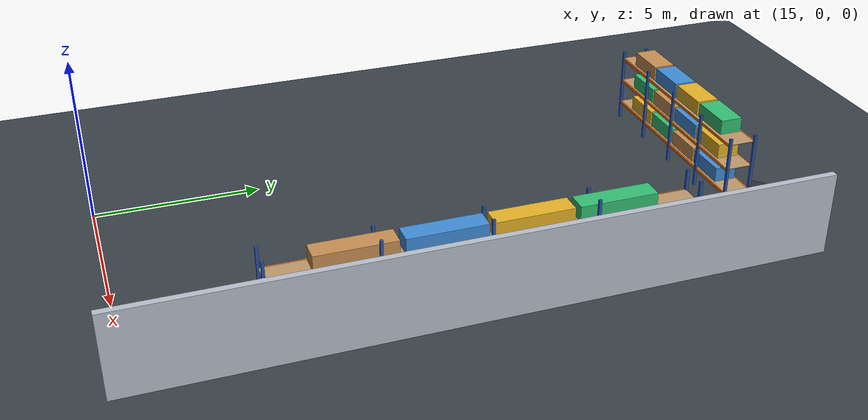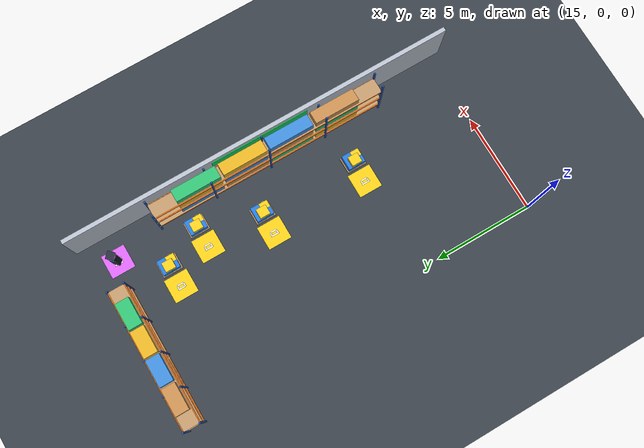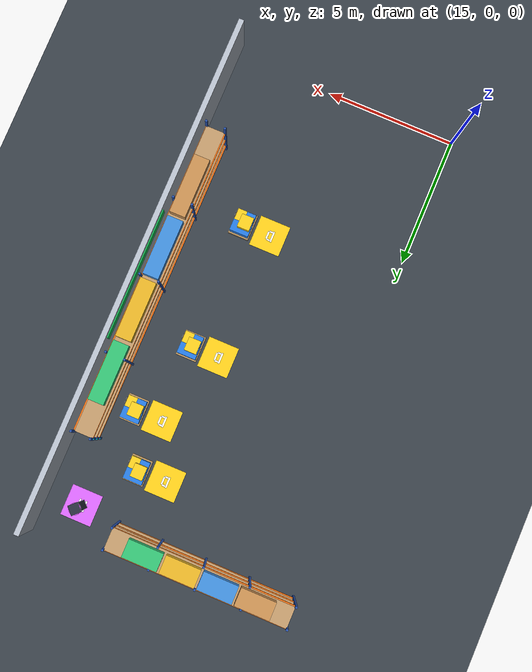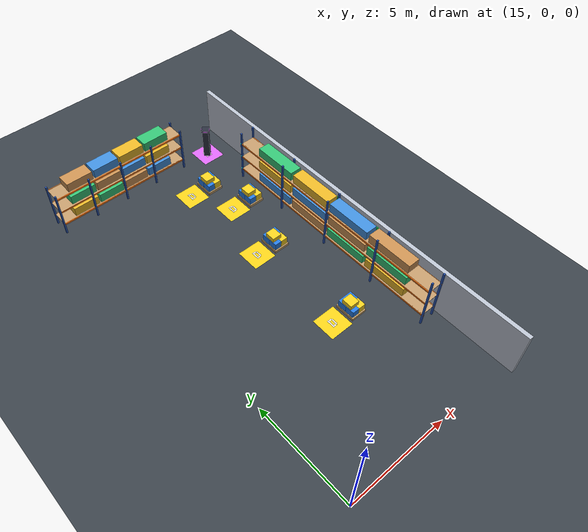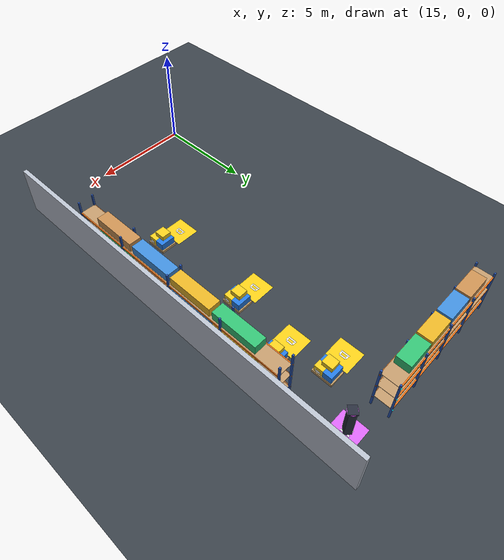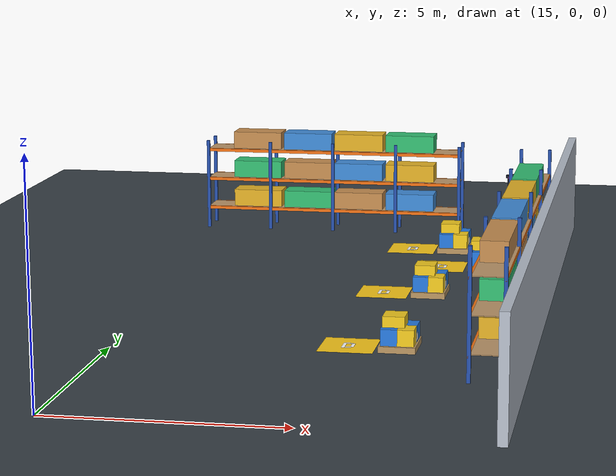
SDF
<sdf version="1.10">
 <world name="warehouse_s4">
  <model name="ground_plane">
   <static>true</static>
   <link name="link">
    <collision name="collision">
     <geometry><plane><normal>0 0 1</normal><size>25 20</size></plane></geometry>
    </collision>
    <visual name="visual">
     <geometry><plane><normal>0 0 1</normal><size>25 20</size></plane></geometry>
     <material>
      <ambient>0.22 0.25 0.28 1</ambient>
      <diffuse>0.22 0.25 0.28 1</diffuse>
      <specular>0.08 0.08 0.08 1</specular>
     </material>
    </visual>
    <pose>12.0 9.5 0 0 0 0</pose>
   </link>
  </model>
  <model name="wall_east">
   <static>true</static>
   <pose>23.9 9.5 1.25 0 0 0</pose>
   <link name="link">
    <collision name="c"><geometry><box><size>0.2 20.0 2.5</size></box></geometry></collision>
    <visual name="v">
     <geometry><box><size>0.2 20.0 2.5</size></box></geometry>
     <material>
      <ambient>0.65 0.68 0.72 1</ambient>
      <diffuse>0.72 0.75 0.80 1</diffuse>
      <specular>0.15 0.15 0.15 1</specular>
     </material>
    </visual>
   </link>
  </model>
  <model name="pad_dropoff_2">
   <static>true</static>
   <pose>20.000 16.000 0.003 0 0 0</pose>
   <link name="link">
    <visual name="pad_surface">
     <geometry><box><size>1.10 1.10 0.004</size></box></geometry>
     <material>
      <ambient>0.65 0.35 0.05 1</ambient>
      <diffuse>0.90 0.55 0.08 1</diffuse>
      <specular>0.4 0.4 0.4 1</specular>
     </material>
    </visual>
    <visual name="pad_border">
     <pose>0 0 0.002 0 0 0</pose>
     <geometry><box><size>1.20 1.20 0.002</size></box></geometry>
     <material><ambient>0.98 0.75 0.08 1</ambient><diffuse>1.0 0.80 0.10 1</diffuse></material>
    </visual>
    <visual name="stencil_d_vert">
     <pose>-0.10 0 0.005 0 0 0</pose>
     <geometry><box><size>0.07 0.42 0.003</size></box></geometry>
     <material><ambient>1 1 1 1</ambient><diffuse>1 1 1 1</diffuse><specular>0.5 0.5 0.5 1</specular></material>
    </visual>
    <visual name="stencil_d_top">
     <pose>0.0 0.16 0.005 0 0 0</pose>
     <geometry><box><size>0.15 0.07 0.003</size></box></geometry>
     <material><ambient>1 1 1 1</ambient><diffuse>1 1 1 1</diffuse><specular>0.5 0.5 0.5 1</specular></material>
    </visual>
    <visual name="stencil_d_bot">
     <pose>0.0 -0.16 0.005 0 0 0</pose>
     <geometry><box><size>0.15 0.07 0.003</size></box></geometry>
     <material><ambient>1 1 1 1</ambient><diffuse>1 1 1 1</diffuse><specular>0.5 0.5 0.5 1</specular></material>
    </visual>
    <visual name="stencil_d_right">
     <pose>0.09 0 0.005 0 0 0</pose>
     <geometry><box><size>0.07 0.30 0.003</size></box></geometry>
     <material><ambient>1 1 1 1</ambient><diffuse>1 1 1 1</diffuse><specular>0.5 0.5 0.5 1</specular></material>
    </visual>
   </link>
  </model>
  <model name="cargo_dropoff_2">
   <static>true</static>
   <pose>21.100 16.000 0.0 0 0 0.0000</pose>
   <link name="link">
    <visual name="pallet_base">
     <pose>0 0 0.07 0 0 0</pose>
     <geometry><box><size>0.80 1.00 0.14</size></box></geometry>
     <material><ambient>0.58 0.46 0.30 1</ambient><diffuse>0.72 0.58 0.38 1</diffuse></material>
    </visual>
    <visual name="box_ll">
     <pose>-0.18 -0.22 0.32 0 0 0</pose>
     <geometry><box><size>0.36 0.44 0.36</size></box></geometry>
     <material>
      <ambient>0.12 0.38 0.72 1</ambient>
      <diffuse>0.15 0.48 0.88 1</diffuse>
      <specular>0.3 0.3 0.3 1</specular>
     </material>
    </visual>
    <visual name="box_lr">
     <pose>0.18 -0.22 0.32 0 0 0</pose>
     <geometry><box><size>0.36 0.44 0.36</size></box></geometry>
     <material><ambient>0.88 0.70 0.08 1</ambient><diffuse>0.96 0.80 0.12 1</diffuse></material>
    </visual>
    <visual name="box_top">
     <pose>0 0.22 0.32 0 0 0</pose>
     <geometry><box><size>0.74 0.44 0.36</size></box></geometry>
     <material>
      <ambient>0.12 0.38 0.72 1</ambient>
      <diffuse>0.15 0.48 0.88 1</diffuse>
      <specular>0.3 0.3 0.3 1</specular>
     </material>
    </visual>
    <visual name="box_upper">
     <pose>-0.10 0.0 0.62 0 0 0</pose>
     <geometry><box><size>0.48 0.52 0.24</size></box></geometry>
     <material><ambient>0.88 0.70 0.08 1</ambient><diffuse>0.96 0.80 0.12 1</diffuse></material>
    </visual>
    <visual name="placard">
     <pose>0.402 -0.22 0.32 0 0 0</pose>
     <geometry><box><size>0.005 0.24 0.16</size></box></geometry>
     <material><ambient>0.95 0.95 0.95 1</ambient><diffuse>0.98 0.98 0.98 1</diffuse></material>
    </visual>
   </link>
  </model>
  <model name="pad_dropoff_3">
   <static>true</static>
   <pose>20.000 11.000 0.003 0 0 0</pose>
   <link name="link">
    <visual name="pad_surface">
     <geometry><box><size>1.10 1.10 0.004</size></box></geometry>
     <material>
      <ambient>0.65 0.35 0.05 1</ambient>
      <diffuse>0.90 0.55 0.08 1</diffuse>
      <specular>0.4 0.4 0.4 1</specular>
     </material>
    </visual>
    <visual name="pad_border">
     <pose>0 0 0.002 0 0 0</pose>
     <geometry><box><size>1.20 1.20 0.002</size></box></geometry>
     <material><ambient>0.98 0.75 0.08 1</ambient><diffuse>1.0 0.80 0.10 1</diffuse></material>
    </visual>
    <visual name="stencil_d_vert">
     <pose>-0.10 0 0.005 0 0 0</pose>
     <geometry><box><size>0.07 0.42 0.003</size></box></geometry>
     <material><ambient>1 1 1 1</ambient><diffuse>1 1 1 1</diffuse><specular>0.5 0.5 0.5 1</specular></material>
    </visual>
    <visual name="stencil_d_top">
     <pose>0.0 0.16 0.005 0 0 0</pose>
     <geometry><box><size>0.15 0.07 0.003</size></box></geometry>
     <material><ambient>1 1 1 1</ambient><diffuse>1 1 1 1</diffuse><specular>0.5 0.5 0.5 1</specular></material>
    </visual>
    <visual name="stencil_d_bot">
     <pose>0.0 -0.16 0.005 0 0 0</pose>
     <geometry><box><size>0.15 0.07 0.003</size></box></geometry>
     <material><ambient>1 1 1 1</ambient><diffuse>1 1 1 1</diffuse><specular>0.5 0.5 0.5 1</specular></material>
    </visual>
    <visual name="stencil_d_right">
     <pose>0.09 0 0.005 0 0 0</pose>
     <geometry><box><size>0.07 0.30 0.003</size></box></geometry>
     <material><ambient>1 1 1 1</ambient><diffuse>1 1 1 1</diffuse><specular>0.5 0.5 0.5 1</specular></material>
    </visual>
   </link>
  </model>
  <model name="cargo_dropoff_3">
   <static>true</static>
   <pose>21.100 11.000 0.0 0 0 0.0000</pose>
   <link name="link">
    <visual name="pallet_base">
     <pose>0 0 0.07 0 0 0</pose>
     <geometry><box><size>0.80 1.00 0.14</size></box></geometry>
     <material><ambient>0.58 0.46 0.30 1</ambient><diffuse>0.72 0.58 0.38 1</diffuse></material>
    </visual>
    <visual name="box_ll">
     <pose>-0.18 -0.22 0.32 0 0 0</pose>
     <geometry><box><size>0.36 0.44 0.36</size></box></geometry>
     <material>
      <ambient>0.12 0.38 0.72 1</ambient>
      <diffuse>0.15 0.48 0.88 1</diffuse>
      <specular>0.3 0.3 0.3 1</specular>
     </material>
    </visual>
    <visual name="box_lr">
     <pose>0.18 -0.22 0.32 0 0 0</pose>
     <geometry><box><size>0.36 0.44 0.36</size></box></geometry>
     <material><ambient>0.88 0.70 0.08 1</ambient><diffuse>0.96 0.80 0.12 1</diffuse></material>
    </visual>
    <visual name="box_top">
     <pose>0 0.22 0.32 0 0 0</pose>
     <geometry><box><size>0.74 0.44 0.36</size></box></geometry>
     <material>
      <ambient>0.12 0.38 0.72 1</ambient>
      <diffuse>0.15 0.48 0.88 1</diffuse>
      <specular>0.3 0.3 0.3 1</specular>
     </material>
    </visual>
    <visual name="box_upper">
     <pose>-0.10 0.0 0.62 0 0 0</pose>
     <geometry><box><size>0.48 0.52 0.24</size></box></geometry>
     <material><ambient>0.88 0.70 0.08 1</ambient><diffuse>0.96 0.80 0.12 1</diffuse></material>
    </visual>
    <visual name="placard">
     <pose>0.402 -0.22 0.32 0 0 0</pose>
     <geometry><box><size>0.005 0.24 0.16</size></box></geometry>
     <material><ambient>0.95 0.95 0.95 1</ambient><diffuse>0.98 0.98 0.98 1</diffuse></material>
    </visual>
   </link>
  </model>
  <model name="pad_dropoff_4">
   <static>true</static>
   <pose>20.000 6.000 0.003 0 0 0</pose>
   <link name="link">
    <visual name="pad_surface">
     <geometry><box><size>1.10 1.10 0.004</size></box></geometry>
     <material>
      <ambient>0.65 0.35 0.05 1</ambient>
      <diffuse>0.90 0.55 0.08 1</diffuse>
      <specular>0.4 0.4 0.4 1</specular>
     </material>
    </visual>
    <visual name="pad_border">
     <pose>0 0 0.002 0 0 0</pose>
     <geometry><box><size>1.20 1.20 0.002</size></box></geometry>
     <material><ambient>0.98 0.75 0.08 1</ambient><diffuse>1.0 0.80 0.10 1</diffuse></material>
    </visual>
    <visual name="stencil_d_vert">
     <pose>-0.10 0 0.005 0 0 0</pose>
     <geometry><box><size>0.07 0.42 0.003</size></box></geometry>
     <material><ambient>1 1 1 1</ambient><diffuse>1 1 1 1</diffuse><specular>0.5 0.5 0.5 1</specular></material>
    </visual>
    <visual name="stencil_d_top">
     <pose>0.0 0.16 0.005 0 0 0</pose>
     <geometry><box><size>0.15 0.07 0.003</size></box></geometry>
     <material><ambient>1 1 1 1</ambient><diffuse>1 1 1 1</diffuse><specular>0.5 0.5 0.5 1</specular></material>
    </visual>
    <visual name="stencil_d_bot">
     <pose>0.0 -0.16 0.005 0 0 0</pose>
     <geometry><box><size>0.15 0.07 0.003</size></box></geometry>
     <material><ambient>1 1 1 1</ambient><diffuse>1 1 1 1</diffuse><specular>0.5 0.5 0.5 1</specular></material>
    </visual>
    <visual name="stencil_d_right">
     <pose>0.09 0 0.005 0 0 0</pose>
     <geometry><box><size>0.07 0.30 0.003</size></box></geometry>
     <material><ambient>1 1 1 1</ambient><diffuse>1 1 1 1</diffuse><specular>0.5 0.5 0.5 1</specular></material>
    </visual>
   </link>
  </model>
  <model name="cargo_dropoff_4">
   <static>true</static>
   <pose>21.100 6.000 0.0 0 0 0.0000</pose>
   <link name="link">
    <visual name="pallet_base">
     <pose>0 0 0.07 0 0 0</pose>
     <geometry><box><size>0.80 1.00 0.14</size></box></geometry>
     <material><ambient>0.58 0.46 0.30 1</ambient><diffuse>0.72 0.58 0.38 1</diffuse></material>
    </visual>
    <visual name="box_ll">
     <pose>-0.18 -0.22 0.32 0 0 0</pose>
     <geometry><box><size>0.36 0.44 0.36</size></box></geometry>
     <material>
      <ambient>0.12 0.38 0.72 1</ambient>
      <diffuse>0.15 0.48 0.88 1</diffuse>
      <specular>0.3 0.3 0.3 1</specular>
     </material>
    </visual>
    <visual name="box_lr">
     <pose>0.18 -0.22 0.32 0 0 0</pose>
     <geometry><box><size>0.36 0.44 0.36</size></box></geometry>
     <material><ambient>0.88 0.70 0.08 1</ambient><diffuse>0.96 0.80 0.12 1</diffuse></material>
    </visual>
    <visual name="box_top">
     <pose>0 0.22 0.32 0 0 0</pose>
     <geometry><box><size>0.74 0.44 0.36</size></box></geometry>
     <material>
      <ambient>0.12 0.38 0.72 1</ambient>
      <diffuse>0.15 0.48 0.88 1</diffuse>
      <specular>0.3 0.3 0.3 1</specular>
     </material>
    </visual>
    <visual name="box_upper">
     <pose>-0.10 0.0 0.62 0 0 0</pose>
     <geometry><box><size>0.48 0.52 0.24</size></box></geometry>
     <material><ambient>0.88 0.70 0.08 1</ambient><diffuse>0.96 0.80 0.12 1</diffuse></material>
    </visual>
    <visual name="placard">
     <pose>0.402 -0.22 0.32 0 0 0</pose>
     <geometry><box><size>0.005 0.24 0.16</size></box></geometry>
     <material><ambient>0.95 0.95 0.95 1</ambient><diffuse>0.98 0.98 0.98 1</diffuse></material>
    </visual>
   </link>
  </model>
  <model name="pad_dropoff_5">
   <static>true</static>
   <pose>21.000 14.000 0.003 0 0 0</pose>
   <link name="link">
    <visual name="pad_surface">
     <geometry><box><size>1.10 1.10 0.004</size></box></geometry>
     <material>
      <ambient>0.65 0.35 0.05 1</ambient>
      <diffuse>0.90 0.55 0.08 1</diffuse>
      <specular>0.4 0.4 0.4 1</specular>
     </material>
    </visual>
    <visual name="pad_border">
     <pose>0 0 0.002 0 0 0</pose>
     <geometry><box><size>1.20 1.20 0.002</size></box></geometry>
     <material><ambient>0.98 0.75 0.08 1</ambient><diffuse>1.0 0.80 0.10 1</diffuse></material>
    </visual>
    <visual name="stencil_d_vert">
     <pose>-0.10 0 0.005 0 0 0</pose>
     <geometry><box><size>0.07 0.42 0.003</size></box></geometry>
     <material><ambient>1 1 1 1</ambient><diffuse>1 1 1 1</diffuse><specular>0.5 0.5 0.5 1</specular></material>
    </visual>
    <visual name="stencil_d_top">
     <pose>0.0 0.16 0.005 0 0 0</pose>
     <geometry><box><size>0.15 0.07 0.003</size></box></geometry>
     <material><ambient>1 1 1 1</ambient><diffuse>1 1 1 1</diffuse><specular>0.5 0.5 0.5 1</specular></material>
    </visual>
    <visual name="stencil_d_bot">
     <pose>0.0 -0.16 0.005 0 0 0</pose>
     <geometry><box><size>0.15 0.07 0.003</size></box></geometry>
     <material><ambient>1 1 1 1</ambient><diffuse>1 1 1 1</diffuse><specular>0.5 0.5 0.5 1</specular></material>
    </visual>
    <visual name="stencil_d_right">
     <pose>0.09 0 0.005 0 0 0</pose>
     <geometry><box><size>0.07 0.30 0.003</size></box></geometry>
     <material><ambient>1 1 1 1</ambient><diffuse>1 1 1 1</diffuse><specular>0.5 0.5 0.5 1</specular></material>
    </visual>
   </link>
  </model>
  <model name="cargo_dropoff_5">
   <static>true</static>
   <pose>22.100 14.000 0.0 0 0 0.0000</pose>
   <link name="link">
    <visual name="pallet_base">
     <pose>0 0 0.07 0 0 0</pose>
     <geometry><box><size>0.80 1.00 0.14</size></box></geometry>
     <material><ambient>0.58 0.46 0.30 1</ambient><diffuse>0.72 0.58 0.38 1</diffuse></material>
    </visual>
    <visual name="box_ll">
     <pose>-0.18 -0.22 0.32 0 0 0</pose>
     <geometry><box><size>0.36 0.44 0.36</size></box></geometry>
     <material>
      <ambient>0.12 0.38 0.72 1</ambient>
      <diffuse>0.15 0.48 0.88 1</diffuse>
      <specular>0.3 0.3 0.3 1</specular>
     </material>
    </visual>
    <visual name="box_lr">
     <pose>0.18 -0.22 0.32 0 0 0</pose>
     <geometry><box><size>0.36 0.44 0.36</size></box></geometry>
     <material><ambient>0.88 0.70 0.08 1</ambient><diffuse>0.96 0.80 0.12 1</diffuse></material>
    </visual>
    <visual name="box_top">
     <pose>0 0.22 0.32 0 0 0</pose>
     <geometry><box><size>0.74 0.44 0.36</size></box></geometry>
     <material>
      <ambient>0.12 0.38 0.72 1</ambient>
      <diffuse>0.15 0.48 0.88 1</diffuse>
      <specular>0.3 0.3 0.3 1</specular>
     </material>
    </visual>
    <visual name="box_upper">
     <pose>-0.10 0.0 0.62 0 0 0</pose>
     <geometry><box><size>0.48 0.52 0.24</size></box></geometry>
     <material><ambient>0.88 0.70 0.08 1</ambient><diffuse>0.96 0.80 0.12 1</diffuse></material>
    </visual>
    <visual name="placard">
     <pose>0.402 -0.22 0.32 0 0 0</pose>
     <geometry><box><size>0.005 0.24 0.16</size></box></geometry>
     <material><ambient>0.95 0.95 0.95 1</ambient><diffuse>0.98 0.98 0.98 1</diffuse></material>
    </visual>
   </link>
  </model>
  <model name="pad_charge_ne">
   <static>true</static>
   <pose>22.500 18.000 0.003 0 0 0</pose>
   <link name="link">
    <visual name="pad_surface">
     <geometry><box><size>1.10 1.10 0.004</size></box></geometry>
     <material>
      <ambient>0.40 0.15 0.65 1</ambient>
      <diffuse>0.65 0.25 0.95 1</diffuse>
      <specular>0.5 0.5 0.5 1</specular>
     </material>
    </visual>
    <visual name="pad_border">
     <pose>0 0 0.002 0 0 0</pose>
     <geometry><box><size>1.20 1.20 0.002</size></box></geometry>
     <material><ambient>0.80 0.35 1.0 1</ambient><diffuse>0.85 0.40 1.0 1</diffuse></material>
    </visual>
    <visual name="stencil_h_left">
     <pose>-0.12 0 0.005 0 0 0</pose>
     <geometry><box><size>0.07 0.42 0.003</size></box></geometry>
     <material><ambient>1 1 1 1</ambient><diffuse>1 1 1 1</diffuse><specular>0.5 0.5 0.5 1</specular></material>
    </visual>
    <visual name="stencil_h_right">
     <pose>0.12 0 0.005 0 0 0</pose>
     <geometry><box><size>0.07 0.42 0.003</size></box></geometry>
     <material><ambient>1 1 1 1</ambient><diffuse>1 1 1 1</diffuse><specular>0.5 0.5 0.5 1</specular></material>
    </visual>
    <visual name="stencil_h_mid">
     <pose>0 0 0.005 0 0 0</pose>
     <geometry><box><size>0.22 0.07 0.003</size></box></geometry>
     <material><ambient>1 1 1 1</ambient><diffuse>1 1 1 1</diffuse><specular>0.5 0.5 0.5 1</specular></material>
    </visual>
   </link>
  </model>
  <model name="kiosk_charge_ne">
   <static>true</static>
   <pose>22.500 18.000 0.0 0 0 2.3560</pose>
   <link name="link">
    <visual name="pillar">
     <pose>0 0 0.80 0 0 0</pose>
     <geometry><box><size>0.32 0.32 1.60</size></box></geometry>
     <material>
      <ambient>0.12 0.14 0.18 1</ambient>
      <diffuse>0.16 0.18 0.24 1</diffuse>
      <specular>0.4 0.4 0.4 1</specular>
     </material>
    </visual>
    <visual name="cap">
     <pose>0 0 1.64 0 0 0</pose>
     <geometry><box><size>0.38 0.38 0.08</size></box></geometry>
     <material>
      <ambient>0.12 0.14 0.18 1</ambient>
      <diffuse>0.16 0.18 0.24 1</diffuse>
      <specular>0.4 0.4 0.4 1</specular>
     </material>
    </visual>
    <visual name="halo_ring">
     <pose>0 0 1.61 0 0 0</pose>
     <geometry><cylinder><radius>0.22</radius><length>0.05</length></cylinder></geometry>
     <material>
      <ambient>0.75 0.25 0.95 1</ambient>
      <diffuse>0.85 0.35 1.0 1</diffuse>
      <specular>1 1 1 1</specular>
     </material>
    </visual>
    <visual name="screen">
     <pose>0.162 0 1.10 0 0 0</pose>
     <geometry><box><size>0.008 0.22 0.32</size></box></geometry>
     <material>
      <ambient>0.0 0.85 1.0 1</ambient>
      <diffuse>0.0 0.95 1.0 1</diffuse>
      <specular>0.8 0.8 0.8 1</specular>
     </material>
    </visual>
   </link>
  </model>
  <model name="rack_right_north">
   <static>true</static>
   <pose>17.500 18.400 0.000 0 0 0.0000</pose>
   <link name="link">
    <visual name="post_1">
     <pose>-3.460 -0.410 1.200 0 0 0</pose>
     <geometry><box><size>0.08 0.08 2.400</size></box></geometry>
     <material>
      <ambient>0.10 0.20 0.45 1</ambient>
      <diffuse>0.15 0.32 0.68 1</diffuse>
      <specular>0.3 0.3 0.3 1</specular>
     </material>
    </visual>
    <visual name="post_2">
     <pose>-3.460 0.410 1.200 0 0 0</pose>
     <geometry><box><size>0.08 0.08 2.400</size></box></geometry>
     <material>
      <ambient>0.10 0.20 0.45 1</ambient>
      <diffuse>0.15 0.32 0.68 1</diffuse>
      <specular>0.3 0.3 0.3 1</specular>
     </material>
    </visual>
    <visual name="post_3">
     <pose>3.460 -0.410 1.200 0 0 0</pose>
     <geometry><box><size>0.08 0.08 2.400</size></box></geometry>
     <material>
      <ambient>0.10 0.20 0.45 1</ambient>
      <diffuse>0.15 0.32 0.68 1</diffuse>
      <specular>0.3 0.3 0.3 1</specular>
     </material>
    </visual>
    <visual name="post_4">
     <pose>3.460 0.410 1.200 0 0 0</pose>
     <geometry><box><size>0.08 0.08 2.400</size></box></geometry>
     <material>
      <ambient>0.10 0.20 0.45 1</ambient>
      <diffuse>0.15 0.32 0.68 1</diffuse>
      <specular>0.3 0.3 0.3 1</specular>
     </material>
    </visual>
    <visual name="post_5">
     <pose>0.000 -0.410 1.200 0 0 0</pose>
     <geometry><box><size>0.08 0.08 2.400</size></box></geometry>
     <material>
      <ambient>0.10 0.20 0.45 1</ambient>
      <diffuse>0.15 0.32 0.68 1</diffuse>
      <specular>0.3 0.3 0.3 1</specular>
     </material>
    </visual>
    <visual name="post_6">
     <pose>0.000 0.410 1.200 0 0 0</pose>
     <geometry><box><size>0.08 0.08 2.400</size></box></geometry>
     <material>
      <ambient>0.10 0.20 0.45 1</ambient>
      <diffuse>0.15 0.32 0.68 1</diffuse>
      <specular>0.3 0.3 0.3 1</specular>
     </material>
    </visual>
    <visual name="post_7">
     <pose>-1.730 -0.410 1.200 0 0 0</pose>
     <geometry><box><size>0.08 0.08 2.400</size></box></geometry>
     <material>
      <ambient>0.10 0.20 0.45 1</ambient>
      <diffuse>0.15 0.32 0.68 1</diffuse>
      <specular>0.3 0.3 0.3 1</specular>
     </material>
    </visual>
    <visual name="post_8">
     <pose>-1.730 0.410 1.200 0 0 0</pose>
     <geometry><box><size>0.08 0.08 2.400</size></box></geometry>
     <material>
      <ambient>0.10 0.20 0.45 1</ambient>
      <diffuse>0.15 0.32 0.68 1</diffuse>
      <specular>0.3 0.3 0.3 1</specular>
     </material>
    </visual>
    <visual name="post_9">
     <pose>1.730 -0.410 1.200 0 0 0</pose>
     <geometry><box><size>0.08 0.08 2.400</size></box></geometry>
     <material>
      <ambient>0.10 0.20 0.45 1</ambient>
      <diffuse>0.15 0.32 0.68 1</diffuse>
      <specular>0.3 0.3 0.3 1</specular>
     </material>
    </visual>
    <visual name="post_10">
     <pose>1.730 0.410 1.200 0 0 0</pose>
     <geometry><box><size>0.08 0.08 2.400</size></box></geometry>
     <material>
      <ambient>0.10 0.20 0.45 1</ambient>
      <diffuse>0.15 0.32 0.68 1</diffuse>
      <specular>0.3 0.3 0.3 1</specular>
     </material>
    </visual>
    <visual name="beam_front_1">
     <pose>0 -0.410 0.550 0 0 0</pose>
     <geometry><box><size>7.000 0.05 0.08</size></box></geometry>
     <material>
      <ambient>0.85 0.35 0.05 1</ambient>
      <diffuse>0.95 0.45 0.08 1</diffuse>
      <specular>0.2 0.2 0.2 1</specular>
     </material>
    </visual>
    <visual name="beam_back_1">
     <pose>0 0.410 0.550 0 0 0</pose>
     <geometry><box><size>7.000 0.05 0.08</size></box></geometry>
     <material>
      <ambient>0.85 0.35 0.05 1</ambient>
      <diffuse>0.95 0.45 0.08 1</diffuse>
      <specular>0.2 0.2 0.2 1</specular>
     </material>
    </visual>
    <visual name="deck_1">
     <pose>0 0 0.580 0 0 0</pose>
     <geometry><box><size>6.900 0.840 0.02</size></box></geometry>
     <material>
      <ambient>0.60 0.48 0.32 1</ambient>
      <diffuse>0.75 0.60 0.42 1</diffuse>
      <specular>0.1 0.1 0.1 1</specular>
     </material>
    </visual>
    <visual name="cargo_t1_b1">
     <pose>-2.100 0 0.825 0 0 0</pose>
     <geometry><box><size>1.312 0.675 0.450</size></box></geometry>
     <material><ambient>0.75 0.55 0.10 1</ambient><diffuse>0.90 0.70 0.15 1</diffuse></material>
    </visual>
    <visual name="cargo_t1_b2">
     <pose>-0.700 0 0.825 0 0 0</pose>
     <geometry><box><size>1.312 0.675 0.450</size></box></geometry>
     <material><ambient>0.15 0.60 0.35 1</ambient><diffuse>0.20 0.75 0.45 1</diffuse></material>
    </visual>
    <visual name="cargo_t1_b3">
     <pose>0.700 0 0.825 0 0 0</pose>
     <geometry><box><size>1.312 0.675 0.450</size></box></geometry>
     <material><ambient>0.65 0.45 0.25 1</ambient><diffuse>0.78 0.56 0.32 1</diffuse></material>
    </visual>
    <visual name="cargo_t1_b4">
     <pose>2.100 0 0.825 0 0 0</pose>
     <geometry><box><size>1.312 0.675 0.450</size></box></geometry>
     <material><ambient>0.20 0.45 0.70 1</ambient><diffuse>0.25 0.55 0.85 1</diffuse></material>
    </visual>
    <visual name="led_indicator_1">
     <pose>3.460 0.450 0.600 0 0 0</pose>
     <geometry><sphere><radius>0.035</radius></sphere></geometry>
     <material>
      <ambient>0.0 0.85 1.0 1</ambient>
      <diffuse>0.0 0.95 1.0 1</diffuse>
      <specular>1 1 1 1</specular>
     </material>
    </visual>
    <visual name="beam_front_2">
     <pose>0 -0.410 1.350 0 0 0</pose>
     <geometry><box><size>7.000 0.05 0.08</size></box></geometry>
     <material>
      <ambient>0.85 0.35 0.05 1</ambient>
      <diffuse>0.95 0.45 0.08 1</diffuse>
      <specular>0.2 0.2 0.2 1</specular>
     </material>
    </visual>
    <visual name="beam_back_2">
     <pose>0 0.410 1.350 0 0 0</pose>
     <geometry><box><size>7.000 0.05 0.08</size></box></geometry>
     <material>
      <ambient>0.85 0.35 0.05 1</ambient>
      <diffuse>0.95 0.45 0.08 1</diffuse>
      <specular>0.2 0.2 0.2 1</specular>
     </material>
    </visual>
    <visual name="deck_2">
     <pose>0 0 1.380 0 0 0</pose>
     <geometry><box><size>6.900 0.840 0.02</size></box></geometry>
     <material>
      <ambient>0.60 0.48 0.32 1</ambient>
      <diffuse>0.75 0.60 0.42 1</diffuse>
      <specular>0.1 0.1 0.1 1</specular>
     </material>
    </visual>
    <visual name="cargo_t2_b1">
     <pose>-2.100 0 1.625 0 0 0</pose>
     <geometry><box><size>1.312 0.675 0.450</size></box></geometry>
     <material><ambient>0.15 0.60 0.35 1</ambient><diffuse>0.20 0.75 0.45 1</diffuse></material>
    </visual>
    <visual name="cargo_t2_b2">
     <pose>-0.700 0 1.625 0 0 0</pose>
     <geometry><box><size>1.312 0.675 0.450</size></box></geometry>
     <material><ambient>0.65 0.45 0.25 1</ambient><diffuse>0.78 0.56 0.32 1</diffuse></material>
    </visual>
    <visual name="cargo_t2_b3">
     <pose>0.700 0 1.625 0 0 0</pose>
     <geometry><box><size>1.312 0.675 0.450</size></box></geometry>
     <material><ambient>0.20 0.45 0.70 1</ambient><diffuse>0.25 0.55 0.85 1</diffuse></material>
    </visual>
    <visual name="cargo_t2_b4">
     <pose>2.100 0 1.625 0 0 0</pose>
     <geometry><box><size>1.312 0.675 0.450</size></box></geometry>
     <material><ambient>0.75 0.55 0.10 1</ambient><diffuse>0.90 0.70 0.15 1</diffuse></material>
    </visual>
    <visual name="led_indicator_2">
     <pose>3.460 0.450 1.400 0 0 0</pose>
     <geometry><sphere><radius>0.035</radius></sphere></geometry>
     <material>
      <ambient>0.0 0.85 1.0 1</ambient>
      <diffuse>0.0 0.95 1.0 1</diffuse>
      <specular>1 1 1 1</specular>
     </material>
    </visual>
    <visual name="beam_front_3">
     <pose>0 -0.410 2.150 0 0 0</pose>
     <geometry><box><size>7.000 0.05 0.08</size></box></geometry>
     <material>
      <ambient>0.85 0.35 0.05 1</ambient>
      <diffuse>0.95 0.45 0.08 1</diffuse>
      <specular>0.2 0.2 0.2 1</specular>
     </material>
    </visual>
    <visual name="beam_back_3">
     <pose>0 0.410 2.150 0 0 0</pose>
     <geometry><box><size>7.000 0.05 0.08</size></box></geometry>
     <material>
      <ambient>0.85 0.35 0.05 1</ambient>
      <diffuse>0.95 0.45 0.08 1</diffuse>
      <specular>0.2 0.2 0.2 1</specular>
     </material>
    </visual>
    <visual name="deck_3">
     <pose>0 0 2.180 0 0 0</pose>
     <geometry><box><size>6.900 0.840 0.02</size></box></geometry>
     <material>
      <ambient>0.60 0.48 0.32 1</ambient>
      <diffuse>0.75 0.60 0.42 1</diffuse>
      <specular>0.1 0.1 0.1 1</specular>
     </material>
    </visual>
    <visual name="cargo_t3_b1">
     <pose>-2.100 0 2.425 0 0 0</pose>
     <geometry><box><size>1.312 0.675 0.450</size></box></geometry>
     <material><ambient>0.65 0.45 0.25 1</ambient><diffuse>0.78 0.56 0.32 1</diffuse></material>
    </visual>
    <visual name="cargo_t3_b2">
     <pose>-0.700 0 2.425 0 0 0</pose>
     <geometry><box><size>1.312 0.675 0.450</size></box></geometry>
     <material><ambient>0.20 0.45 0.70 1</ambient><diffuse>0.25 0.55 0.85 1</diffuse></material>
    </visual>
    <visual name="cargo_t3_b3">
     <pose>0.700 0 2.425 0 0 0</pose>
     <geometry><box><size>1.312 0.675 0.450</size></box></geometry>
     <material><ambient>0.75 0.55 0.10 1</ambient><diffuse>0.90 0.70 0.15 1</diffuse></material>
    </visual>
    <visual name="cargo_t3_b4">
     <pose>2.100 0 2.425 0 0 0</pose>
     <geometry><box><size>1.312 0.675 0.450</size></box></geometry>
     <material><ambient>0.15 0.60 0.35 1</ambient><diffuse>0.20 0.75 0.45 1</diffuse></material>
    </visual>
    <visual name="led_indicator_3">
     <pose>3.460 0.450 2.200 0 0 0</pose>
     <geometry><sphere><radius>0.035</radius></sphere></geometry>
     <material>
      <ambient>0.0 0.85 1.0 1</ambient>
      <diffuse>0.0 0.95 1.0 1</diffuse>
      <specular>1 1 1 1</specular>
     </material>
    </visual>
   </link>
  </model>
  <model name="rack_right_east_hi">
   <static>true</static>
   <pose>23.200 9.500 0.000 0 0 1.5708</pose>
   <link name="link">
    <visual name="post_1">
     <pose>-5.960 -0.360 1.400 0 0 0</pose>
     <geometry><box><size>0.08 0.08 2.800</size></box></geometry>
     <material>
      <ambient>0.10 0.20 0.45 1</ambient>
      <diffuse>0.15 0.32 0.68 1</diffuse>
      <specular>0.3 0.3 0.3 1</specular>
     </material>
    </visual>
    <visual name="post_2">
     <pose>-5.960 0.360 1.400 0 0 0</pose>
     <geometry><box><size>0.08 0.08 2.800</size></box></geometry>
     <material>
      <ambient>0.10 0.20 0.45 1</ambient>
      <diffuse>0.15 0.32 0.68 1</diffuse>
      <specular>0.3 0.3 0.3 1</specular>
     </material>
    </visual>
    <visual name="post_3">
     <pose>5.960 -0.360 1.400 0 0 0</pose>
     <geometry><box><size>0.08 0.08 2.800</size></box></geometry>
     <material>
      <ambient>0.10 0.20 0.45 1</ambient>
      <diffuse>0.15 0.32 0.68 1</diffuse>
      <specular>0.3 0.3 0.3 1</specular>
     </material>
    </visual>
    <visual name="post_4">
     <pose>5.960 0.360 1.400 0 0 0</pose>
     <geometry><box><size>0.08 0.08 2.800</size></box></geometry>
     <material>
      <ambient>0.10 0.20 0.45 1</ambient>
      <diffuse>0.15 0.32 0.68 1</diffuse>
      <specular>0.3 0.3 0.3 1</specular>
     </material>
    </visual>
    <visual name="post_5">
     <pose>0.000 -0.360 1.400 0 0 0</pose>
     <geometry><box><size>0.08 0.08 2.800</size></box></geometry>
     <material>
      <ambient>0.10 0.20 0.45 1</ambient>
      <diffuse>0.15 0.32 0.68 1</diffuse>
      <specular>0.3 0.3 0.3 1</specular>
     </material>
    </visual>
    <visual name="post_6">
     <pose>0.000 0.360 1.400 0 0 0</pose>
     <geometry><box><size>0.08 0.08 2.800</size></box></geometry>
     <material>
      <ambient>0.10 0.20 0.45 1</ambient>
      <diffuse>0.15 0.32 0.68 1</diffuse>
      <specular>0.3 0.3 0.3 1</specular>
     </material>
    </visual>
    <visual name="post_7">
     <pose>-2.980 -0.360 1.400 0 0 0</pose>
     <geometry><box><size>0.08 0.08 2.800</size></box></geometry>
     <material>
      <ambient>0.10 0.20 0.45 1</ambient>
      <diffuse>0.15 0.32 0.68 1</diffuse>
      <specular>0.3 0.3 0.3 1</specular>
     </material>
    </visual>
    <visual name="post_8">
     <pose>-2.980 0.360 1.400 0 0 0</pose>
     <geometry><box><size>0.08 0.08 2.800</size></box></geometry>
     <material>
      <ambient>0.10 0.20 0.45 1</ambient>
      <diffuse>0.15 0.32 0.68 1</diffuse>
      <specular>0.3 0.3 0.3 1</specular>
     </material>
    </visual>
    <visual name="post_9">
     <pose>2.980 -0.360 1.400 0 0 0</pose>
     <geometry><box><size>0.08 0.08 2.800</size></box></geometry>
     <material>
      <ambient>0.10 0.20 0.45 1</ambient>
      <diffuse>0.15 0.32 0.68 1</diffuse>
      <specular>0.3 0.3 0.3 1</specular>
     </material>
    </visual>
    <visual name="post_10">
     <pose>2.980 0.360 1.400 0 0 0</pose>
     <geometry><box><size>0.08 0.08 2.800</size></box></geometry>
     <material>
      <ambient>0.10 0.20 0.45 1</ambient>
      <diffuse>0.15 0.32 0.68 1</diffuse>
      <specular>0.3 0.3 0.3 1</specular>
     </material>
    </visual>
    <visual name="beam_front_1">
     <pose>0 -0.360 0.550 0 0 0</pose>
     <geometry><box><size>12.000 0.05 0.08</size></box></geometry>
     <material>
      <ambient>0.85 0.35 0.05 1</ambient>
      <diffuse>0.95 0.45 0.08 1</diffuse>
      <specular>0.2 0.2 0.2 1</specular>
     </material>
    </visual>
    <visual name="beam_back_1">
     <pose>0 0.360 0.550 0 0 0</pose>
     <geometry><box><size>12.000 0.05 0.08</size></box></geometry>
     <material>
      <ambient>0.85 0.35 0.05 1</ambient>
      <diffuse>0.95 0.45 0.08 1</diffuse>
      <specular>0.2 0.2 0.2 1</specular>
     </material>
    </visual>
    <visual name="deck_1">
     <pose>0 0 0.580 0 0 0</pose>
     <geometry><box><size>11.900 0.740 0.02</size></box></geometry>
     <material>
      <ambient>0.60 0.48 0.32 1</ambient>
      <diffuse>0.75 0.60 0.42 1</diffuse>
      <specular>0.1 0.1 0.1 1</specular>
     </material>
    </visual>
    <visual name="cargo_t1_b1">
     <pose>-3.600 0 0.825 0 0 0</pose>
     <geometry><box><size>2.250 0.600 0.450</size></box></geometry>
     <material><ambient>0.75 0.55 0.10 1</ambient><diffuse>0.90 0.70 0.15 1</diffuse></material>
    </visual>
    <visual name="cargo_t1_b2">
     <pose>-1.200 0 0.825 0 0 0</pose>
     <geometry><box><size>2.250 0.600 0.450</size></box></geometry>
     <material><ambient>0.15 0.60 0.35 1</ambient><diffuse>0.20 0.75 0.45 1</diffuse></material>
    </visual>
    <visual name="cargo_t1_b3">
     <pose>1.200 0 0.825 0 0 0</pose>
     <geometry><box><size>2.250 0.600 0.450</size></box></geometry>
     <material><ambient>0.65 0.45 0.25 1</ambient><diffuse>0.78 0.56 0.32 1</diffuse></material>
    </visual>
    <visual name="cargo_t1_b4">
     <pose>3.600 0 0.825 0 0 0</pose>
     <geometry><box><size>2.250 0.600 0.450</size></box></geometry>
     <material><ambient>0.20 0.45 0.70 1</ambient><diffuse>0.25 0.55 0.85 1</diffuse></material>
    </visual>
    <visual name="led_indicator_1">
     <pose>5.960 0.400 0.600 0 0 0</pose>
     <geometry><sphere><radius>0.035</radius></sphere></geometry>
     <material>
      <ambient>0.0 0.85 1.0 1</ambient>
      <diffuse>0.0 0.95 1.0 1</diffuse>
      <specular>1 1 1 1</specular>
     </material>
    </visual>
    <visual name="beam_front_2">
     <pose>0 -0.360 1.350 0 0 0</pose>
     <geometry><box><size>12.000 0.05 0.08</size></box></geometry>
     <material>
      <ambient>0.85 0.35 0.05 1</ambient>
      <diffuse>0.95 0.45 0.08 1</diffuse>
      <specular>0.2 0.2 0.2 1</specular>
     </material>
    </visual>
    <visual name="beam_back_2">
     <pose>0 0.360 1.350 0 0 0</pose>
     <geometry><box><size>12.000 0.05 0.08</size></box></geometry>
     <material>
      <ambient>0.85 0.35 0.05 1</ambient>
      <diffuse>0.95 0.45 0.08 1</diffuse>
      <specular>0.2 0.2 0.2 1</specular>
     </material>
    </visual>
    <visual name="deck_2">
     <pose>0 0 1.380 0 0 0</pose>
     <geometry><box><size>11.900 0.740 0.02</size></box></geometry>
     <material>
      <ambient>0.60 0.48 0.32 1</ambient>
      <diffuse>0.75 0.60 0.42 1</diffuse>
      <specular>0.1 0.1 0.1 1</specular>
     </material>
    </visual>
    <visual name="cargo_t2_b1">
     <pose>-3.600 0 1.625 0 0 0</pose>
     <geometry><box><size>2.250 0.600 0.450</size></box></geometry>
     <material><ambient>0.15 0.60 0.35 1</ambient><diffuse>0.20 0.75 0.45 1</diffuse></material>
    </visual>
    <visual name="cargo_t2_b2">
     <pose>-1.200 0 1.625 0 0 0</pose>
     <geometry><box><size>2.250 0.600 0.450</size></box></geometry>
     <material><ambient>0.65 0.45 0.25 1</ambient><diffuse>0.78 0.56 0.32 1</diffuse></material>
    </visual>
    <visual name="cargo_t2_b3">
     <pose>1.200 0 1.625 0 0 0</pose>
     <geometry><box><size>2.250 0.600 0.450</size></box></geometry>
     <material><ambient>0.20 0.45 0.70 1</ambient><diffuse>0.25 0.55 0.85 1</diffuse></material>
    </visual>
    <visual name="cargo_t2_b4">
     <pose>3.600 0 1.625 0 0 0</pose>
     <geometry><box><size>2.250 0.600 0.450</size></box></geometry>
     <material><ambient>0.75 0.55 0.10 1</ambient><diffuse>0.90 0.70 0.15 1</diffuse></material>
    </visual>
    <visual name="led_indicator_2">
     <pose>5.960 0.400 1.400 0 0 0</pose>
     <geometry><sphere><radius>0.035</radius></sphere></geometry>
     <material>
      <ambient>0.0 0.85 1.0 1</ambient>
      <diffuse>0.0 0.95 1.0 1</diffuse>
      <specular>1 1 1 1</specular>
     </material>
    </visual>
    <visual name="beam_front_3">
     <pose>0 -0.360 2.150 0 0 0</pose>
     <geometry><box><size>12.000 0.05 0.08</size></box></geometry>
     <material>
      <ambient>0.85 0.35 0.05 1</ambient>
      <diffuse>0.95 0.45 0.08 1</diffuse>
      <specular>0.2 0.2 0.2 1</specular>
     </material>
    </visual>
    <visual name="beam_back_3">
     <pose>0 0.360 2.150 0 0 0</pose>
     <geometry><box><size>12.000 0.05 0.08</size></box></geometry>
     <material>
      <ambient>0.85 0.35 0.05 1</ambient>
      <diffuse>0.95 0.45 0.08 1</diffuse>
      <specular>0.2 0.2 0.2 1</specular>
     </material>
    </visual>
    <visual name="deck_3">
     <pose>0 0 2.180 0 0 0</pose>
     <geometry><box><size>11.900 0.740 0.02</size></box></geometry>
     <material>
      <ambient>0.60 0.48 0.32 1</ambient>
      <diffuse>0.75 0.60 0.42 1</diffuse>
      <specular>0.1 0.1 0.1 1</specular>
     </material>
    </visual>
    <visual name="cargo_t3_b1">
     <pose>-3.600 0 2.425 0 0 0</pose>
     <geometry><box><size>2.250 0.600 0.450</size></box></geometry>
     <material><ambient>0.65 0.45 0.25 1</ambient><diffuse>0.78 0.56 0.32 1</diffuse></material>
    </visual>
    <visual name="cargo_t3_b2">
     <pose>-1.200 0 2.425 0 0 0</pose>
     <geometry><box><size>2.250 0.600 0.450</size></box></geometry>
     <material><ambient>0.20 0.45 0.70 1</ambient><diffuse>0.25 0.55 0.85 1</diffuse></material>
    </visual>
    <visual name="cargo_t3_b3">
     <pose>1.200 0 2.425 0 0 0</pose>
     <geometry><box><size>2.250 0.600 0.450</size></box></geometry>
     <material><ambient>0.75 0.55 0.10 1</ambient><diffuse>0.90 0.70 0.15 1</diffuse></material>
    </visual>
    <visual name="cargo_t3_b4">
     <pose>3.600 0 2.425 0 0 0</pose>
     <geometry><box><size>2.250 0.600 0.450</size></box></geometry>
     <material><ambient>0.15 0.60 0.35 1</ambient><diffuse>0.20 0.75 0.45 1</diffuse></material>
    </visual>
    <visual name="led_indicator_3">
     <pose>5.960 0.400 2.200 0 0 0</pose>
     <geometry><sphere><radius>0.035</radius></sphere></geometry>
     <material>
      <ambient>0.0 0.85 1.0 1</ambient>
      <diffuse>0.0 0.95 1.0 1</diffuse>
      <specular>1 1 1 1</specular>
     </material>
    </visual>
   </link>
  </model>
  <model name="sign_outbound">
   <static>true</static>
   <pose>23.78 9.5 2.0 0 0 1.5708</pose>
   <link name="link">
    <visual name="v">
     <geometry><box><size>5.0 0.04 0.50</size></box></geometry>
     <material>
      <ambient>0.05 0.60 0.25 1</ambient>
      <diffuse>0.08 0.80 0.35 1</diffuse>
      <specular>0.4 0.4 0.4 1</specular>
     </material>
    </visual>
   </link>
  </model>
 </world>
</sdf>
